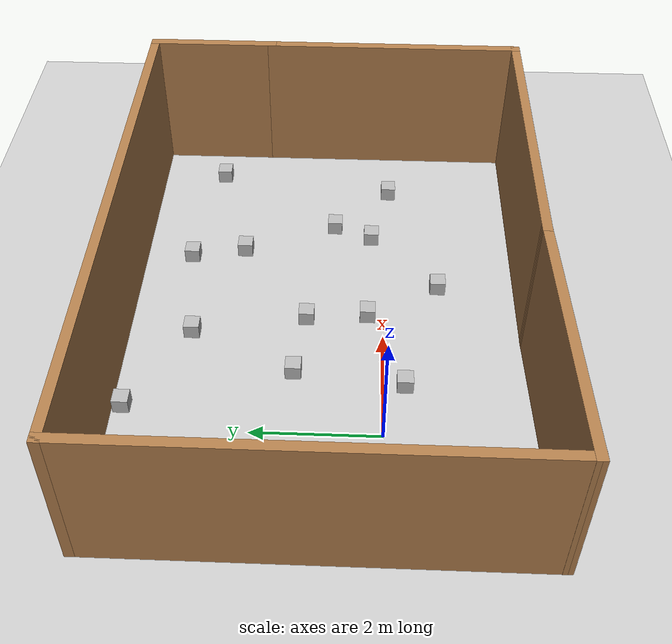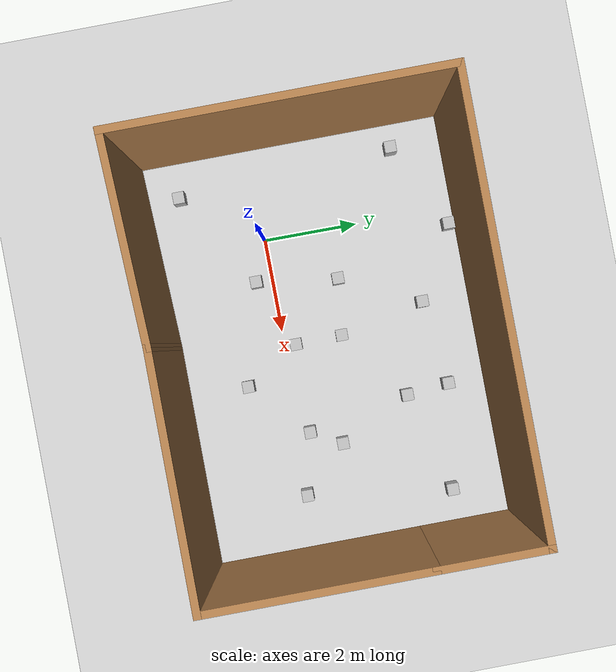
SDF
<sdf version="1.7">
 <world name="default">
  <light name="sun" type="directional">
   <pose>0 0 10 0 -0 0</pose>
   <diffuse>0.8 0.8 0.8 1</diffuse>
   <specular>0.2 0.2 0.2 1</specular>
   <attenuation>
    <range>1000</range>
    <constant>0.9</constant>
    <linear>0.01</linear>
    <quadratic>0.001</quadratic>
   </attenuation>
   <direction>-0.5 0.1 -0.9</direction>
   <spot><inner_angle>0</inner_angle><outer_angle>0</outer_angle><falloff>0</falloff></spot>
  </light>
  <model name="ground_plane">
   <static>1</static>
   <link name="link">
    <collision name="collision">
     <geometry><plane><normal>0 0 1</normal><size>100 100</size></plane></geometry>
     <surface>
      <contact><collide_bitmask>65535</collide_bitmask></contact>
      <friction><ode><mu>100</mu><mu2>50</mu2></ode></friction>
     </surface>
    </collision>
    <visual name="visual">
     <cast_shadows>0</cast_shadows>
     <geometry><plane><normal>0 0 1</normal><size>100 100</size></plane></geometry>
     <material>
      <script><uri>file://media/materials/scripts/gazebo.material</uri><name>Gazebo/Grey</name></script>
     </material>
    </visual>
   </link>
  </model>
  <gravity>0 0 -9.8</gravity>
  <magnetic_field>6e-06 2.3e-05 -4.2e-05</magnetic_field>
  <atmosphere type="adiabatic"/>
  <physics type="ode">
   <max_step_size>0.001</max_step_size>
   <real_time_factor>1</real_time_factor>
   <real_time_update_rate>1000</real_time_update_rate>
  </physics>
  <scene><ambient>0.4 0.4 0.4 1</ambient><background>0.7 0.7 0.7 1</background><shadows>1</shadows></scene>
  <spherical_coordinates>
   <surface_model>EARTH_WGS84</surface_model>
   <latitude_deg>0</latitude_deg>
   <longitude_deg>0</longitude_deg>
   <elevation>0</elevation>
   <heading_deg>0</heading_deg>
  </spherical_coordinates>
  <model name="my_cube">
   <static>1</static>
   <link name="link">
    <collision name="collision"><geometry><box><size>0.25 0.25 0.25</size></box></geometry></collision>
    <visual name="visual"><geometry><box><size>0.25 0.25 0.25</size></box></geometry></visual>
   </link>
   <pose>0.882589 -0.329184 0.235389 0 -0 0</pose>
  </model>
  <model name="my_cube_0">
   <static>1</static>
   <link name="link">
    <collision name="collision"><geometry><box><size>0.25 0.25 0.25</size></box></geometry></collision>
    <visual name="visual"><geometry><box><size>0.25 0.25 0.25</size></box></geometry></visual>
   </link>
   <pose>1.11867 1.39375 0.207468 0 -0 0</pose>
  </model>
  <model name="my_cube_1">
   <static>1</static>
   <link name="link">
    <collision name="collision"><geometry><box><size>0.25 0.25 0.25</size></box></geometry></collision>
    <visual name="visual"><geometry><box><size>0.25 0.25 0.25</size></box></geometry></visual>
   </link>
   <pose>1.93297 3.07109 0.191275 0 -0 0</pose>
  </model>
  <model name="my_cube_2">
   <static>1</static>
   <link name="link">
    <collision name="collision"><geometry><box><size>0.25 0.25 0.25</size></box></geometry></collision>
    <visual name="visual"><geometry><box><size>0.25 0.25 0.25</size></box></geometry></visual>
   </link>
   <pose>2.32239 1.25141 0.160047 0 -0 0</pose>
  </model>
  <model name="my_cube_3">
   <static>1</static>
   <link name="link">
    <collision name="collision"><geometry><box><size>0.25 0.25 0.25</size></box></geometry></collision>
    <visual name="visual"><geometry><box><size>0.25 0.25 0.25</size></box></geometry></visual>
   </link>
   <pose>2.34086 0.257578 0.231179 0 -0 0</pose>
  </model>
  <model name="my_cube_4">
   <static>1</static>
   <link name="link">
    <collision name="collision"><geometry><box><size>0.25 0.25 0.25</size></box></geometry></collision>
    <visual name="visual"><geometry><box><size>0.25 0.25 0.25</size></box></geometry></visual>
   </link>
   <pose>3.82781 2.3841 0.25489 0 -0 0</pose>
  </model>
  <model name="my_cube_5">
   <static>1</static>
   <link name="link">
    <collision name="collision"><geometry><box><size>0.25 0.25 0.25</size></box></geometry></collision>
    <visual name="visual"><geometry><box><size>0.25 0.25 0.25</size></box></geometry></visual>
   </link>
   <pose>4.60378 0.855585 0.136336 0 -0 0</pose>
  </model>
  <model name="my_cube_6">
   <static>1</static>
   <link name="link">
    <collision name="collision"><geometry><box><size>0.25 0.25 0.25</size></box></geometry></collision>
    <visual name="visual"><geometry><box><size>0.25 0.25 0.25</size></box></geometry></visual>
   </link>
   <pose>4.23408 0.214394 0.219324 0 -0 0</pose>
  </model>
  <model name="my_cube_7">
   <static>1</static>
   <link name="link">
    <collision name="collision"><geometry><box><size>0.25 0.25 0.25</size></box></geometry></collision>
    <visual name="visual"><geometry><box><size>0.25 0.25 0.25</size></box></geometry></visual>
   </link>
   <pose>0.391043 3.9333 0.172527 0 -0 0</pose>
  </model>
  <model name="model5">
   <pose>2.35713 0.878621 0 0 -0 0</pose>
   <link name="Wall_3">
    <collision name="Wall_3_Collision">
     <geometry><box><size>5 0.15 2.5</size></box></geometry>
     <pose>0 0 1.25 0 -0 0</pose>
    </collision>
    <visual name="Wall_3_Visual">
     <pose>0 0 1.25 0 -0 0</pose>
     <geometry><box><size>5 0.15 2.5</size></box></geometry>
     <material>
      <script><uri>file://media/materials/scripts/gazebo.material</uri><name>Gazebo/Wood</name></script>
      <ambient>1 1 1 1</ambient>
     </material>
     <meta><layer>0</layer></meta>
    </visual>
    <pose>2.00138 -3.14862 0 0 -0 0</pose>
   </link>
   <link name="Wall_4">
    <collision name="Wall_4_Collision">
     <geometry><box><size>4.5 0.15 2.5</size></box></geometry>
     <pose>0 0 1.25 0 -0 0</pose>
    </collision>
    <visual name="Wall_4_Visual">
     <pose>0 0 1.25 0 -0 0</pose>
     <geometry><box><size>4.5 0.15 2.5</size></box></geometry>
     <material>
      <script><uri>file://media/materials/scripts/gazebo.material</uri><name>Gazebo/Wood</name></script>
      <ambient>1 1 1 1</ambient>
     </material>
     <meta><layer>0</layer></meta>
    </visual>
    <pose>4.42638 -0.973621 0 0 -0 1.5708</pose>
   </link>
   <link name="Wall_5">
    <collision name="Wall_5_Collision">
     <geometry><box><size>2.25 0.15 2.5</size></box></geometry>
     <pose>0 0 1.25 0 -0 0</pose>
    </collision>
    <visual name="Wall_5_Visual">
     <pose>0 0 1.25 0 -0 0</pose>
     <geometry><box><size>2.25 0.15 2.5</size></box></geometry>
     <material>
      <script><uri>file://media/materials/scripts/gazebo.material</uri><name>Gazebo/Wood</name></script>
      <ambient>1 1 1 1</ambient>
     </material>
     <meta><layer>0</layer></meta>
    </visual>
    <pose>4.42638 2.25138 0 0 -0 1.5708</pose>
   </link>
   <link name="Wall_7">
    <collision name="Wall_7_Collision">
     <geometry><box><size>9 0.15 2.5</size></box></geometry>
     <pose>0 0 1.25 0 -0 0</pose>
    </collision>
    <visual name="Wall_7_Visual">
     <pose>0 0 1.25 0 -0 0</pose>
     <geometry><box><size>9 0.15 2.5</size></box></geometry>
     <material>
      <script><uri>file://media/materials/scripts/gazebo.material</uri><name>Gazebo/Wood</name></script>
      <ambient>1 1 1 1</ambient>
     </material>
     <meta><layer>0</layer></meta>
    </visual>
    <pose>0.001379 3.30138 0 0 -0 3.14159</pose>
   </link>
   <link name="Wall_8">
    <collision name="Wall_8_Collision">
     <geometry><box><size>6.75 0.15 2.5</size></box></geometry>
     <pose>0 0 1.25 0 -0 0</pose>
    </collision>
    <visual name="Wall_8_Visual">
     <pose>0 0 1.25 0 -0 0</pose>
     <geometry><box><size>6.75 0.15 2.5</size></box></geometry>
     <material>
      <script><uri>file://media/materials/scripts/gazebo.material</uri><name>Gazebo/Wood</name></script>
      <ambient>1 1 1 1</ambient>
     </material>
     <meta><layer>0</layer></meta>
    </visual>
    <pose>-4.42362 0.001379 0 0 -0 -1.5708</pose>
   </link>
   <link name="Wall_9">
    <collision name="Wall_9_Collision">
     <geometry><box><size>4.15281 0.15 2.5</size></box></geometry>
     <pose>0 0 1.25 0 -0 0</pose>
    </collision>
    <visual name="Wall_9_Visual">
     <pose>0 0 1.25 0 -0 0</pose>
     <geometry><box><size>4.15281 0.15 2.5</size></box></geometry>
     <material>
      <script><uri>file://media/materials/scripts/gazebo.material</uri><name>Gazebo/Wood</name></script>
      <ambient>1 1 1 1</ambient>
     </material>
     <meta><layer>0</layer></meta>
    </visual>
    <pose>-2.42362 -3.22362 0 0 -0 0.037482</pose>
   </link>
   <static>1</static>
  </model>
  <model name="my_cube_8">
   <static>1</static>
   <link name="link">
    <collision name="collision"><geometry><box><size>0.25 0.25 0.25</size></box></geometry></collision>
    <visual name="visual"><geometry><box><size>0.25 0.25 0.25</size></box></geometry></visual>
   </link>
   <pose>3.75009 3.30042 0.160047 0 -0 0</pose>
  </model>
  <model name="my_cube_9">
   <static>1</static>
   <link name="link">
    <collision name="collision"><geometry><box><size>0.25 0.25 0.25</size></box></geometry></collision>
    <visual name="visual"><geometry><box><size>0.25 0.25 0.25</size></box></geometry></visual>
   </link>
   <pose>5.98948 2.97544 0.150888 0 -0 0</pose>
  </model>
  <model name="my_cube_10">
   <static>1</static>
   <link name="link">
    <collision name="collision"><geometry><box><size>0.25 0.25 0.25</size></box></geometry></collision>
    <visual name="visual"><geometry><box><size>0.25 0.25 0.25</size></box></geometry></visual>
   </link>
   <pose>5.55034 -0.087865 0.175137 0 -0 0</pose>
  </model>
  <model name="my_cube_11">
   <static>1</static>
   <link name="link">
    <collision name="collision"><geometry><box><size>0.25 0.25 0.25</size></box></geometry></collision>
    <visual name="visual"><geometry><box><size>0.25 0.25 0.25</size></box></geometry></visual>
   </link>
   <pose>-1.17607 -1.61951 0.223221 0 -0 0</pose>
  </model>
  <model name="my_cube_12">
   <static>1</static>
   <link name="link">
    <collision name="collision"><geometry><box><size>0.25 0.25 0.25</size></box></geometry></collision>
    <visual name="visual"><geometry><box><size>0.25 0.25 0.25</size></box></geometry></visual>
   </link>
   <pose>-1.42242 3 0.214217 0 -0 0</pose>
  </model>
  <model name="my_cube_13">
   <static>1</static>
   <link name="link">
    <collision name="collision"><geometry><box><size>0.25 0.25 0.25</size></box></geometry></collision>
    <visual name="visual"><geometry><box><size>0.25 0.25 0.25</size></box></geometry></visual>
   </link>
   <pose>3.044 -0.901888 0.215918 0 -0 0</pose>
  </model>
 </world>
</sdf>
